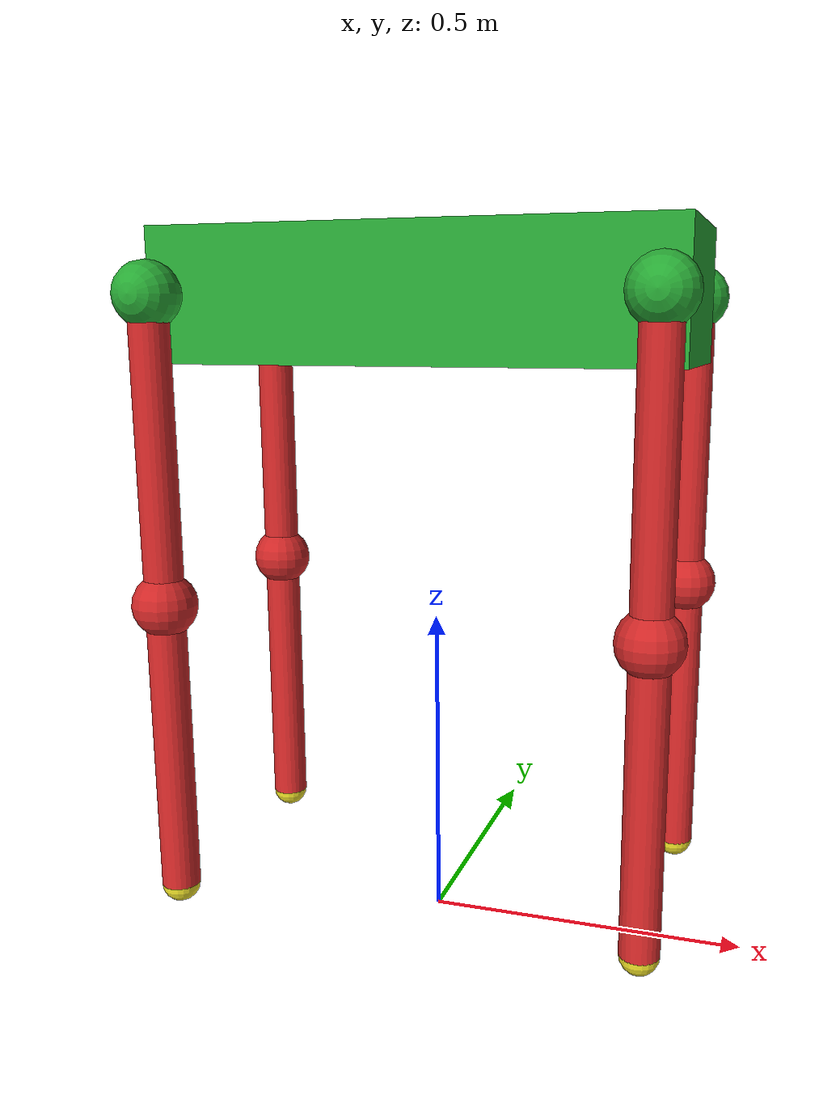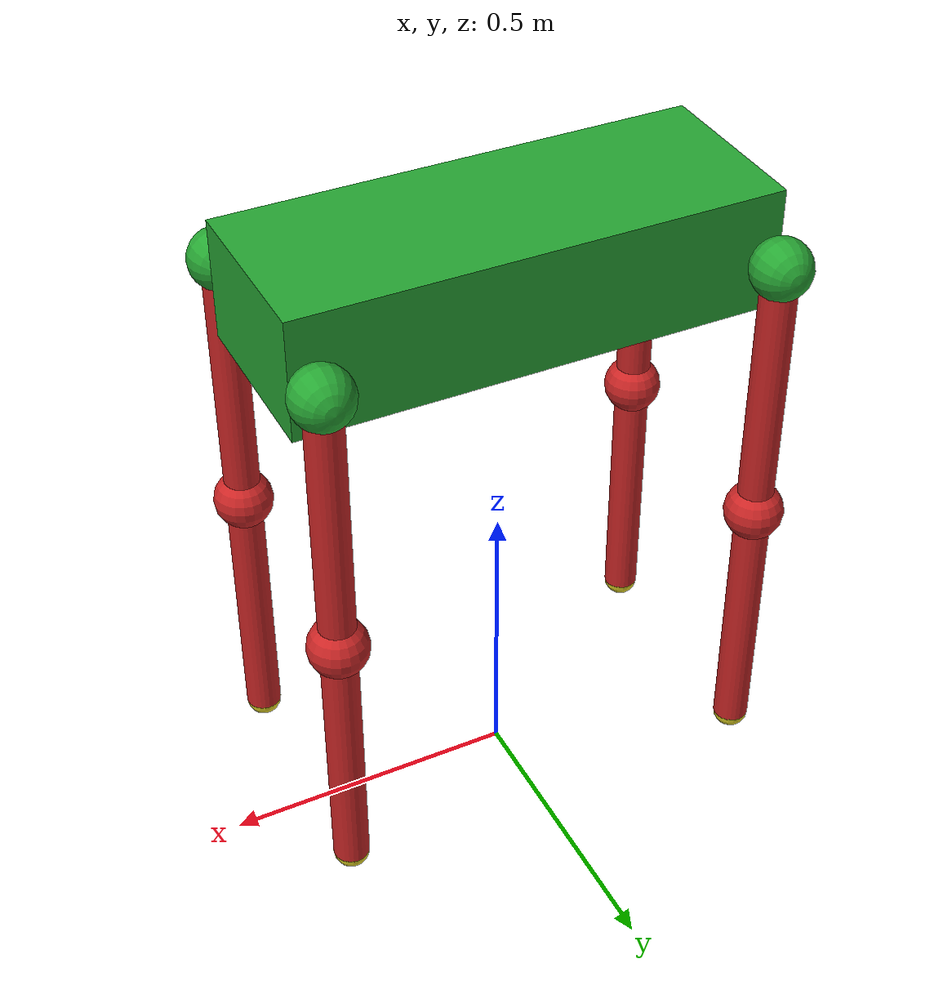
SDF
<!-- |                                    AGILE ROBOT                                  | -->
<?xml version='1.0'?>
<sdf version='1.6'>
  <model name='agile_robot'>
<!-- |                                       BODY                                      | -->
    <link name='body'>
      <pose frame=''>0 0 1 0 0 0</pose>
      <inertial>
        <pose frame=''>0 0 0 0 0 0</pose>
        <mass>25</mass>
        <inertia>
          <ixx>0.0976491</ixx>
          <ixy>0</ixy>
          <ixz>0</ixz>
          <iyy>0.0300741</iyy>
          <iyz>0</iyz>
          <izz>0.109242</izz>
        </inertia>
      </inertial>

      <self_collide>0</self_collide>
      <kinematic>0</kinematic>
      <gravity>1</gravity>
      <enable_wind>0</enable_wind>

      <visual name='body_visual'>
        <pose frame=''>0 0 0 0 -0 0</pose>
        <geometry>
          <box>
            <size>0.8 0.3 0.2</size>
          </box>
        </geometry>
        <material>
          <script>
            <name>Gazebo/Green</name>
            <uri>__default__</uri>
          </script>
          <shader type='vertex'>
            <normal_map>__default__</normal_map>
          </shader>
          <ambient>0 1 0 1</ambient>
          <diffuse>0 1 0 1</diffuse>
          <specular>0.1 0.1 0.1 1</specular>
          <emissive>0 0 0 1</emissive>
        </material>
        <transparency>0</transparency>
        <cast_shadows>1</cast_shadows>
      </visual>

      <collision name='body_collision'>
        <laser_retro>0</laser_retro>
        <max_contacts>10</max_contacts>
        <pose frame=''>0 0 0 0 -0 0</pose>
        <geometry>
          <box>
            <size>0.8 0.3 0.2</size>
          </box>
        </geometry>
        <surface>
          <friction>
            <ode>
              <mu>0.9</mu>
              <mu2>0.45</mu2>
              <fdir1>0 0 0</fdir1>
              <slip1>0</slip1>
              <slip2>0</slip2>
            </ode>
            <torsional>
              <coefficient>1</coefficient>
              <patch_radius>0</patch_radius>
              <surface_radius>0</surface_radius>
              <use_patch_radius>1</use_patch_radius>
              <ode>
                <slip>0</slip>
              </ode>
            </torsional>
          </friction>
          <bounce>
            <restitution_coefficient>0</restitution_coefficient>
            <threshold>1e+06</threshold>
          </bounce>
          <contact>
            <collide_without_contact>0</collide_without_contact>
            <collide_without_contact_bitmask>1</collide_without_contact_bitmask>
            <collide_bitmask>1</collide_bitmask>
            <ode>
              <soft_cfm>0</soft_cfm>
              <soft_erp>0.2</soft_erp>
              <kp>1e+13</kp>
              <kd>1</kd>
              <max_vel>0.01</max_vel>
              <min_depth>0</min_depth>
            </ode>
            <bullet>
              <split_impulse>1</split_impulse>
              <split_impulse_penetration_threshold>-0.01</split_impulse_penetration_threshold>
              <soft_cfm>0</soft_cfm>
              <soft_erp>0.2</soft_erp>
              <kp>1e+13</kp>
              <kd>1</kd>
            </bullet>
          </contact>
        </surface>
      </collision>
    </link> <!-- end body link -->

<!-- |                                  YAW JOINTS                                     | -->
    <joint name='fl_yaw' type='revolute'>
      <parent>body</parent>
      <child>fl_base</child>
      <pose frame=''>0 0 0 0 0 0</pose>

      <axis>
        <xyz>1 0 0</xyz>
        <use_parent_model_frame>1</use_parent_model_frame>
        <limit>
          <lower>-0.329319</lower>
          <upper>0.416405</upper>
          <effort>50</effort>
          <velocity>1</velocity>
        </limit>
        <dynamics>
          <spring_reference>0</spring_reference>
          <spring_stiffness>0</spring_stiffness>
          <damping>0.01</damping>
          <friction>0</friction>
        </dynamics>
      </axis>

      <physics>
        <ode>
          <limit>
            <cfm>0</cfm>
            <erp>0.2</erp>
          </limit>
          <suspension>
            <cfm>0</cfm>
            <erp>0.2</erp>
          </suspension>
        </ode>
      </physics>
    </joint> <!-- end fl_yaw link -->

    <joint name='fr_yaw' type='revolute'>
      <parent>body</parent>
      <child>fr_base</child>
      <pose frame=''>0 0 0 0 0 0</pose>

      <axis>
        <xyz>1 0 0</xyz>
        <use_parent_model_frame>1</use_parent_model_frame>
        <limit>
          <lower>-0.329319</lower>
          <upper>0.416405</upper>
          <effort>50</effort>
          <velocity>1</velocity>
        </limit>
        <dynamics>
          <spring_reference>0</spring_reference>
          <spring_stiffness>0</spring_stiffness>
          <damping>0.01</damping>
          <friction>0</friction>
        </dynamics>
      </axis>

      <physics>
        <ode>
          <limit>
            <cfm>0</cfm>
            <erp>0.2</erp>
          </limit>
          <suspension>
            <cfm>0</cfm>
            <erp>0.2</erp>
          </suspension>
        </ode>
      </physics>
    </joint> <!-- end fr_yaw link -->

    <joint name='hl_yaw' type='revolute'>
      <parent>body</parent>
      <child>hl_base</child>
      <pose frame=''>0 0 0 0 0 0</pose>

      <axis>
        <xyz>1 0 0</xyz>
        <use_parent_model_frame>1</use_parent_model_frame>
        <limit>
          <lower>-0.329319</lower>
          <upper>0.416405</upper>
          <effort>50</effort>
          <velocity>1</velocity>
        </limit>
        <dynamics>
          <spring_reference>0</spring_reference>
          <spring_stiffness>0</spring_stiffness>
          <damping>0.01</damping>
          <friction>0</friction>
        </dynamics>
      </axis>

      <physics>
        <ode>
          <limit>
            <cfm>0</cfm>
            <erp>0.2</erp>
          </limit>
          <suspension>
            <cfm>0</cfm>
            <erp>0.2</erp>
          </suspension>
        </ode>
      </physics>
    </joint> <!-- end hl_yaw link -->

    <joint name='hr_yaw' type='revolute'>
      <parent>body</parent>
      <child>hr_base</child>
      <pose frame=''>0 0 0 0 0 0</pose>

      <axis>
        <xyz>1 0 0</xyz>
        <use_parent_model_frame>1</use_parent_model_frame>
        <limit>
          <lower>-0.329319</lower>
          <upper>0.416405</upper>
          <effort>50</effort>
          <velocity>1</velocity>
        </limit>
        <dynamics>
          <spring_reference>0</spring_reference>
          <spring_stiffness>0</spring_stiffness>
          <damping>0.01</damping>
          <friction>0</friction>
        </dynamics>
      </axis>

      <physics>
        <ode>
          <limit>
            <cfm>0</cfm>
            <erp>0.2</erp>
          </limit>
          <suspension>
            <cfm>0</cfm>
            <erp>0.2</erp>
          </suspension>
        </ode>
      </physics>
    </joint> <!-- end hr_yaw link -->

<!-- |                                   LEG BASES                                     | -->
    <link name='fl_base'>
      <pose frame=''>0.37 0.2 1 0 0 0</pose>
      <inertial>
        <pose frame=''>0 0 0 0 -0 0</pose>
        <mass>0.678337</mass>
        <inertia>
          <ixx>0.0004582</ixx>
          <ixy>0</ixy>
          <ixz>0</ixz>
          <iyy>0.00512144</iyy>
          <iyz>0</iyz>
          <izz>0.00519021</izz>
        </inertia>
      </inertial>

      <velocity_decay>
        <linear>0</linear>
        <angular>0</angular>
      </velocity_decay>
      <self_collide>0</self_collide>
      <kinematic>0</kinematic>
      <gravity>1</gravity>
      <enable_wind>0</enable_wind>

      <visual name='fl_base_visual'>
        <pose frame=''>0 0 0 1.5708 -0 -3.14159</pose>
        <geometry>
          <sphere>
            <radius>0.05</radius>
          </sphere>
        </geometry>
        <material>
          <script>
            <name>Gazebo/Green</name>
            <uri>__default__</uri>
          </script>
          <shader type='vertex'>
            <normal_map>__default__</normal_map>
          </shader>
          <ambient>0 1 0 1</ambient>
          <diffuse>0 1 0 1</diffuse>
          <specular>0.1 0.1 0.1 1</specular>
          <emissive>0 0 0 1</emissive>
        </material>

        <transparency>0</transparency>
        <cast_shadows>1</cast_shadows>
      </visual>

      <collision name='fl_base_collision'>
        <laser_retro>0</laser_retro>
        <max_contacts>10</max_contacts>
        <pose frame=''>0 0 0 0 -0 0</pose>
        <geometry>
          <sphere>
            <radius>0.05</radius>
          </sphere>
        </geometry>
        <surface>
          <friction>
            <ode>
              <mu>0.9</mu>
              <mu2>0.45</mu2>
              <fdir1>0 0 0</fdir1>
              <slip1>0</slip1>
              <slip2>0</slip2>
            </ode>
            <torsional>
              <coefficient>1</coefficient>
              <patch_radius>0</patch_radius>
              <surface_radius>0</surface_radius>
              <use_patch_radius>1</use_patch_radius>
              <ode>
                <slip>0</slip>
              </ode>
            </torsional>
          </friction>
          <bounce>
            <restitution_coefficient>0</restitution_coefficient>
            <threshold>1e+06</threshold>
          </bounce>
          <contact>
            <collide_without_contact>0</collide_without_contact>
            <collide_without_contact_bitmask>1</collide_without_contact_bitmask>
            <collide_bitmask>1</collide_bitmask>
            <ode>
              <soft_cfm>0</soft_cfm>
              <soft_erp>0.2</soft_erp>
              <kp>1e+13</kp>
              <kd>1</kd>
              <max_vel>0.01</max_vel>
              <min_depth>0</min_depth>
            </ode>
            <bullet>
              <split_impulse>1</split_impulse>
              <split_impulse_penetration_threshold>-0.01</split_impulse_penetration_threshold>
              <soft_cfm>0</soft_cfm>
              <soft_erp>0.2</soft_erp>
              <kp>1e+13</kp>
              <kd>1</kd>
            </bullet>
          </contact>
        </surface>
      </collision>
    </link> <!-- end fl_base link -->

    <link name='fr_base'>
      <pose frame=''>-0.37 0.2 1 0 0 0</pose>
      <inertial>
        <pose frame=''>0 0 0 0 -0 0</pose>
        <mass>0.678337</mass>
        <inertia>
          <ixx>0.0004582</ixx>
          <ixy>0</ixy>
          <ixz>0</ixz>
          <iyy>0.00512144</iyy>
          <iyz>0</iyz>
          <izz>0.00519021</izz>
        </inertia>
      </inertial>

      <velocity_decay>
        <linear>0</linear>
        <angular>0</angular>
      </velocity_decay>
      <self_collide>0</self_collide>
      <kinematic>0</kinematic>
      <gravity>1</gravity>
      <enable_wind>0</enable_wind>

      <visual name='fr_base_visual'>
        <pose frame=''>0 0 0 1.5708 -0 -3.14159</pose>
        <geometry>
          <sphere>
            <radius>0.05</radius>
          </sphere>
        </geometry>
        <material>
          <script>
            <name>Gazebo/Green</name>
            <uri>__default__</uri>
          </script>
          <shader type='vertex'>
            <normal_map>__default__</normal_map>
          </shader>
          <ambient>0 1 0 1</ambient>
          <diffuse>0 1 0 1</diffuse>
          <specular>0.1 0.1 0.1 1</specular>
          <emissive>0 0 0 1</emissive>
        </material>

        <transparency>0</transparency>
        <cast_shadows>1</cast_shadows>
      </visual>

      <collision name='fr_base_collision'>
        <laser_retro>0</laser_retro>
        <max_contacts>10</max_contacts>
        <pose frame=''>0 0 0 0 -0 0</pose>
        <geometry>
          <sphere>
            <radius>0.05</radius>
          </sphere>
        </geometry>
        <surface>
          <friction>
            <ode>
              <mu>0.9</mu>
              <mu2>0.45</mu2>
              <fdir1>0 0 0</fdir1>
              <slip1>0</slip1>
              <slip2>0</slip2>
            </ode>
            <torsional>
              <coefficient>1</coefficient>
              <patch_radius>0</patch_radius>
              <surface_radius>0</surface_radius>
              <use_patch_radius>1</use_patch_radius>
              <ode>
                <slip>0</slip>
              </ode>
            </torsional>
          </friction>
          <bounce>
            <restitution_coefficient>0</restitution_coefficient>
            <threshold>1e+06</threshold>
          </bounce>
          <contact>
            <collide_without_contact>0</collide_without_contact>
            <collide_without_contact_bitmask>1</collide_without_contact_bitmask>
            <collide_bitmask>1</collide_bitmask>
            <ode>
              <soft_cfm>0</soft_cfm>
              <soft_erp>0.2</soft_erp>
              <kp>1e+13</kp>
              <kd>1</kd>
              <max_vel>0.01</max_vel>
              <min_depth>0</min_depth>
            </ode>
            <bullet>
              <split_impulse>1</split_impulse>
              <split_impulse_penetration_threshold>-0.01</split_impulse_penetration_threshold>
              <soft_cfm>0</soft_cfm>
              <soft_erp>0.2</soft_erp>
              <kp>1e+13</kp>
              <kd>1</kd>
            </bullet>
          </contact>
        </surface>
      </collision>
    </link> <!-- end fr_base link -->

    <link name='hl_base'>
      <pose frame=''>0.37 -0.2 1 0 0 0</pose>
      <inertial>
        <pose frame=''>0 0 0 0 -0 0</pose>
        <mass>0.678337</mass>
        <inertia>
          <ixx>0.0004582</ixx>
          <ixy>0</ixy>
          <ixz>0</ixz>
          <iyy>0.00512144</iyy>
          <iyz>0</iyz>
          <izz>0.00519021</izz>
        </inertia>
      </inertial>

      <velocity_decay>
        <linear>0</linear>
        <angular>0</angular>
      </velocity_decay>
      <self_collide>0</self_collide>
      <kinematic>0</kinematic>
      <gravity>1</gravity>
      <enable_wind>0</enable_wind>

      <visual name='hl_base_visual'>
        <pose frame=''>0 0 0 1.5708 -0 -3.14159</pose>
        <geometry>
          <sphere>
            <radius>0.05</radius>
          </sphere>
        </geometry>
        <material>
          <script>
            <name>Gazebo/Green</name>
            <uri>__default__</uri>
          </script>
          <shader type='vertex'>
            <normal_map>__default__</normal_map>
          </shader>
          <ambient>0 1 0 1</ambient>
          <diffuse>0 1 0 1</diffuse>
          <specular>0.1 0.1 0.1 1</specular>
          <emissive>0 0 0 1</emissive>
        </material>

        <transparency>0</transparency>
        <cast_shadows>1</cast_shadows>
      </visual>

      <collision name='hl_base_collision'>
        <laser_retro>0</laser_retro>
        <max_contacts>10</max_contacts>
        <pose frame=''>0 0 0 0 -0 0</pose>
        <geometry>
          <sphere>
            <radius>0.05</radius>
          </sphere>
        </geometry>
        <surface>
          <friction>
            <ode>
              <mu>0.9</mu>
              <mu2>0.45</mu2>
              <fdir1>0 0 0</fdir1>
              <slip1>0</slip1>
              <slip2>0</slip2>
            </ode>
            <torsional>
              <coefficient>1</coefficient>
              <patch_radius>0</patch_radius>
              <surface_radius>0</surface_radius>
              <use_patch_radius>1</use_patch_radius>
              <ode>
                <slip>0</slip>
              </ode>
            </torsional>
          </friction>
          <bounce>
            <restitution_coefficient>0</restitution_coefficient>
            <threshold>1e+06</threshold>
          </bounce>
          <contact>
            <collide_without_contact>0</collide_without_contact>
            <collide_without_contact_bitmask>1</collide_without_contact_bitmask>
            <collide_bitmask>1</collide_bitmask>
            <ode>
              <soft_cfm>0</soft_cfm>
              <soft_erp>0.2</soft_erp>
              <kp>1e+13</kp>
              <kd>1</kd>
              <max_vel>0.01</max_vel>
              <min_depth>0</min_depth>
            </ode>
            <bullet>
              <split_impulse>1</split_impulse>
              <split_impulse_penetration_threshold>-0.01</split_impulse_penetration_threshold>
              <soft_cfm>0</soft_cfm>
              <soft_erp>0.2</soft_erp>
              <kp>1e+13</kp>
              <kd>1</kd>
            </bullet>
          </contact>
        </surface>
      </collision>
    </link> <!-- end hl_base link -->

    <link name='hr_base'>
      <pose frame=''>-0.37 -0.2 1 0 0 0</pose>
      <inertial>
        <pose frame=''>0 0 0 0 -0 0</pose>
        <mass>0.678337</mass>
        <inertia>
          <ixx>0.0004582</ixx>
          <ixy>0</ixy>
          <ixz>0</ixz>
          <iyy>0.00512144</iyy>
          <iyz>0</iyz>
          <izz>0.00519021</izz>
        </inertia>
      </inertial>

      <velocity_decay>
        <linear>0</linear>
        <angular>0</angular>
      </velocity_decay>
      <self_collide>0</self_collide>
      <kinematic>0</kinematic>
      <gravity>1</gravity>
      <enable_wind>0</enable_wind>

      <visual name='hr_base_visual'>
        <pose frame=''>0 0 0 1.5708 -0 -3.14159</pose>
        <geometry>
          <sphere>
            <radius>0.05</radius>
          </sphere>
        </geometry>
        <material>
          <script>
            <name>Gazebo/Green</name>
            <uri>__default__</uri>
          </script>
          <shader type='vertex'>
            <normal_map>__default__</normal_map>
          </shader>
          <ambient>0 1 0 1</ambient>
          <diffuse>0 1 0 1</diffuse>
          <specular>0.1 0.1 0.1 1</specular>
          <emissive>0 0 0 1</emissive>
        </material>

        <transparency>0</transparency>
        <cast_shadows>1</cast_shadows>
      </visual>

      <collision name='hr_base_collision'>
        <laser_retro>0</laser_retro>
        <max_contacts>10</max_contacts>
        <pose frame=''>0 0 0 0 -0 0</pose>
        <geometry>
          <sphere>
            <radius>0.05</radius>
          </sphere>
        </geometry>
        <surface>
          <friction>
            <ode>
              <mu>0.9</mu>
              <mu2>0.45</mu2>
              <fdir1>0 0 0</fdir1>
              <slip1>0</slip1>
              <slip2>0</slip2>
            </ode>
            <torsional>
              <coefficient>1</coefficient>
              <patch_radius>0</patch_radius>
              <surface_radius>0</surface_radius>
              <use_patch_radius>1</use_patch_radius>
              <ode>
                <slip>0</slip>
              </ode>
            </torsional>
          </friction>
          <bounce>
            <restitution_coefficient>0</restitution_coefficient>
            <threshold>1e+06</threshold>
          </bounce>
          <contact>
            <collide_without_contact>0</collide_without_contact>
            <collide_without_contact_bitmask>1</collide_without_contact_bitmask>
            <collide_bitmask>1</collide_bitmask>
            <ode>
              <soft_cfm>0</soft_cfm>
              <soft_erp>0.2</soft_erp>
              <kp>1e+13</kp>
              <kd>1</kd>
              <max_vel>0.01</max_vel>
              <min_depth>0</min_depth>
            </ode>
            <bullet>
              <split_impulse>1</split_impulse>
              <split_impulse_penetration_threshold>-0.01</split_impulse_penetration_threshold>
              <soft_cfm>0</soft_cfm>
              <soft_erp>0.2</soft_erp>
              <kp>1e+13</kp>
              <kd>1</kd>
            </bullet>
          </contact>
        </surface>
      </collision>
    </link> <!-- end hr_base link -->

<!-- |                                LEG HIP JOINTS                                   | -->
    <joint name='fl_hip' type='revolute'>
      <parent>fl_base</parent>
      <child>fl_leg</child>
      <pose frame=''>0 0 0.23 0 0 0</pose>

      <axis>
        <xyz>0 1 0</xyz>
        <use_parent_model_frame>1</use_parent_model_frame>
        <limit>
          <lower>-0.262827</lower>
          <upper>0.8726</upper>
          <effort>50</effort>
          <velocity>1</velocity>
        </limit>
        <dynamics>
          <spring_reference>0</spring_reference>
          <spring_stiffness>0</spring_stiffness>
          <damping>0.01</damping>
          <friction>0</friction>
        </dynamics>
      </axis>

      <physics>
        <ode>
          <limit>
            <cfm>0</cfm>
            <erp>0.2</erp>
          </limit>
          <suspension>
            <cfm>0</cfm>
            <erp>0.2</erp>
          </suspension>
        </ode>
      </physics>
    </joint> <!-- end fl_hip joint -->

    <joint name='fr_hip' type='revolute'>
      <parent>fr_base</parent>
      <child>fr_leg</child>
      <pose frame=''>0 0 0.23 0 0 0</pose>

      <axis>
        <xyz>0 1 0</xyz>
        <use_parent_model_frame>1</use_parent_model_frame>
        <limit>
          <lower>-0.262827</lower>
          <upper>0.8726</upper>
          <effort>50</effort>
          <velocity>1</velocity>
        </limit>
        <dynamics>
          <spring_reference>0</spring_reference>
          <spring_stiffness>0</spring_stiffness>
          <damping>0.01</damping>
          <friction>0</friction>
        </dynamics>
      </axis>

      <physics>
        <ode>
          <limit>
            <cfm>0</cfm>
            <erp>0.2</erp>
          </limit>
          <suspension>
            <cfm>0</cfm>
            <erp>0.2</erp>
          </suspension>
        </ode>
      </physics>
    </joint> <!-- end fl_hip joint -->

    <joint name='hl_hip' type='revolute'>
      <parent>hl_base</parent>
      <child>hl_leg</child>
      <pose frame=''>0 0 0.23 0 0 0</pose>

      <axis>
        <xyz>0 1 0</xyz>
        <use_parent_model_frame>1</use_parent_model_frame>
        <limit>
          <lower>-0.8726</lower>
          <upper>0.262827</upper>
          <effort>50</effort>
          <velocity>1</velocity>
        </limit>
        <dynamics>
          <spring_reference>0</spring_reference>
          <spring_stiffness>0</spring_stiffness>
          <damping>0.01</damping>
          <friction>0</friction>
        </dynamics>
      </axis>

      <physics>
        <ode>
          <limit>
            <cfm>0</cfm>
            <erp>0.2</erp>
          </limit>
          <suspension>
            <cfm>0</cfm>
            <erp>0.2</erp>
          </suspension>
        </ode>
      </physics>
    </joint> <!-- end hl_hip joint -->

    <joint name='hr_hip' type='revolute'>
      <parent>hr_base</parent>
      <child>hr_leg</child>
      <pose frame=''>0 0 0.23 0 0 0</pose>

      <axis>
        <xyz>0 1 0</xyz>
        <use_parent_model_frame>1</use_parent_model_frame>
        <limit>
          <lower>-0.8726</lower>
          <upper>0.262827</upper>
          <effort>50</effort>
          <velocity>1</velocity>
        </limit>
        <dynamics>
          <spring_reference>0</spring_reference>
          <spring_stiffness>0</spring_stiffness>
          <damping>0.01</damping>
          <friction>0</friction>
        </dynamics>
      </axis>

      <physics>
        <ode>
          <limit>
            <cfm>0</cfm>
            <erp>0.2</erp>
          </limit>
          <suspension>
            <cfm>0</cfm>
            <erp>0.2</erp>
          </suspension>
        </ode>
      </physics>
    </joint> <!-- end hr_hip joint -->

<!-- |                                LEG LEG LINKS                                   | -->
    <link name='fl_leg'>
      <pose frame=''>0.37 0.2 0.77 0 0 0</pose>

      <inertial>
        <pose frame=''>0 0 0 0 0 0</pose>
        <mass>1</mass>
        <inertia>
          <ixx>0.001443</ixx>
          <ixy>0</ixy>
          <ixz>0</ixz>
          <iyy>0.00104333</iyy>
          <iyz>0</iyz>
          <izz>0.00200033</izz>
        </inertia>
      </inertial>

      <velocity_decay>
        <linear>0</linear>
        <angular>0</angular>
      </velocity_decay>
      <self_collide>0</self_collide>
      <kinematic>0</kinematic>
      <gravity>1</gravity>
      <enable_wind>0</enable_wind>

      <visual name='fl_leg_link_visual'>
        <pose frame=''>0 0 0 0 0 0</pose>
        <geometry>
          <cylinder>
            <radius>0.03</radius>
            <length>0.46</length>
          </cylinder>
        </geometry>
        <material>
          <script>
            <name>Gazebo/Red</name>
            <uri>__default__</uri>
          </script>
          <shader type='vertex'>
            <normal_map>__default__</normal_map>
          </shader>
          <ambient>1 0 0 1</ambient>
          <diffuse>1 0 0 1</diffuse>
          <specular>0.1 0.1 0.1 1</specular>
          <emissive>0 0 0 1</emissive>
        </material>
        <transparency>0</transparency>
        <cast_shadows>1</cast_shadows>
      </visual>

      <visual name='fl_leg_knee_visual'>
        <pose frame=''>0 0 -0.23 0 0 0</pose>
        <geometry>
          <sphere>
            <radius>0.05</radius>
          </sphere>
        </geometry>
        <material>
          <script>
            <name>Gazebo/Red</name>
            <uri>__default__</uri>
          </script>
          <shader type='vertex'>
            <normal_map>__default__</normal_map>
          </shader>
          <ambient>1 0 0 1</ambient>
          <diffuse>1 0 0 1</diffuse>
          <specular>0.1 0.1 0.1 1</specular>
          <emissive>0 0 0 1</emissive>
        </material>
        <transparency>0</transparency>
        <cast_shadows>1</cast_shadows>
      </visual>

      <collision name='fl_leg_collision'>
        <laser_retro>0</laser_retro>
        <max_contacts>10</max_contacts>
        <pose frame=''>0 0 0 0 -0 0</pose>
        <geometry>
          <cylinder>
            <radius>0.03</radius>
            <length>0.36</length>
          </cylinder>
        </geometry>
        <surface>
          <friction>
            <ode>
              <mu>0.9</mu>
              <mu2>0.45</mu2>
              <fdir1>0 0 0</fdir1>
              <slip1>0</slip1>
              <slip2>0</slip2>
            </ode>
            <torsional>
              <coefficient>1</coefficient>
              <patch_radius>0</patch_radius>
              <surface_radius>0</surface_radius>
              <use_patch_radius>1</use_patch_radius>
              <ode>
                <slip>0</slip>
              </ode>
            </torsional>
          </friction>
          <bounce>
            <restitution_coefficient>0</restitution_coefficient>
            <threshold>1e+06</threshold>
          </bounce>
          <contact>
            <collide_without_contact>0</collide_without_contact>
            <collide_without_contact_bitmask>1</collide_without_contact_bitmask>
            <collide_bitmask>1</collide_bitmask>
            <ode>
              <soft_cfm>0</soft_cfm>
              <soft_erp>0.2</soft_erp>
              <kp>1e+13</kp>
              <kd>1</kd>
              <max_vel>0.01</max_vel>
              <min_depth>0</min_depth>
            </ode>
            <bullet>
              <split_impulse>1</split_impulse>
              <split_impulse_penetration_threshold>-0.01</split_impulse_penetration_threshold>
              <soft_cfm>0</soft_cfm>
              <soft_erp>0.2</soft_erp>
              <kp>1e+13</kp>
              <kd>1</kd>
            </bullet>
          </contact>
        </surface>
      </collision>
    </link> <!-- end fl_leg link -->

    <link name='fr_leg'>
      <pose frame=''>-0.37 0.2 0.77 0 -0 0</pose>

      <inertial>
        <pose frame=''>0 0 0 0 0 0</pose>
        <mass>1</mass>
        <inertia>
          <ixx>0.001443</ixx>
          <ixy>0</ixy>
          <ixz>0</ixz>
          <iyy>0.00104333</iyy>
          <iyz>0</iyz>
          <izz>0.00200033</izz>
        </inertia>
      </inertial>

      <velocity_decay>
        <linear>0</linear>
        <angular>0</angular>
      </velocity_decay>
      <self_collide>0</self_collide>
      <kinematic>0</kinematic>
      <gravity>1</gravity>
      <enable_wind>0</enable_wind>

      <visual name='fr_leg_link_visual'>
        <pose frame=''>0 0 0 0 0 0</pose>
        <geometry>
          <cylinder>
            <radius>0.03</radius>
            <length>0.46</length>
          </cylinder>
        </geometry>
        <material>
          <script>
            <name>Gazebo/Red</name>
            <uri>__default__</uri>
          </script>
          <shader type='vertex'>
            <normal_map>__default__</normal_map>
          </shader>
          <ambient>1 0 0 1</ambient>
          <diffuse>1 0 0 1</diffuse>
          <specular>0.1 0.1 0.1 1</specular>
          <emissive>0 0 0 1</emissive>
        </material>
        <transparency>0</transparency>
        <cast_shadows>1</cast_shadows>
      </visual>

      <visual name='fr_leg_knee_visual'>
        <pose frame=''>0 0 -0.23 0 -0 0</pose>
        <geometry>
          <sphere>
            <radius>0.05</radius>
          </sphere>
        </geometry>
        <material>
          <script>
            <name>Gazebo/Red</name>
            <uri>__default__</uri>
          </script>
          <shader type='vertex'>
            <normal_map>__default__</normal_map>
          </shader>
          <ambient>1 0 0 1</ambient>
          <diffuse>1 0 0 1</diffuse>
          <specular>0.1 0.1 0.1 1</specular>
          <emissive>0 0 0 1</emissive>
        </material>
        <transparency>0</transparency>
        <cast_shadows>1</cast_shadows>
      </visual>

      <collision name='fr_leg_collision'>
        <laser_retro>0</laser_retro>
        <max_contacts>10</max_contacts>
        <pose frame=''>0 0 0 0 -0 0</pose>
        <geometry>
          <cylinder>
            <radius>0.03</radius>
            <length>0.36</length>
          </cylinder>
        </geometry>
        <surface>
          <friction>
            <ode>
              <mu>0.9</mu>
              <mu2>0.45</mu2>
              <fdir1>0 0 0</fdir1>
              <slip1>0</slip1>
              <slip2>0</slip2>
            </ode>
            <torsional>
              <coefficient>1</coefficient>
              <patch_radius>0</patch_radius>
              <surface_radius>0</surface_radius>
              <use_patch_radius>1</use_patch_radius>
              <ode>
                <slip>0</slip>
              </ode>
            </torsional>
          </friction>
          <bounce>
            <restitution_coefficient>0</restitution_coefficient>
            <threshold>1e+06</threshold>
          </bounce>
          <contact>
            <collide_without_contact>0</collide_without_contact>
            <collide_without_contact_bitmask>1</collide_without_contact_bitmask>
            <collide_bitmask>1</collide_bitmask>
            <ode>
              <soft_cfm>0</soft_cfm>
              <soft_erp>0.2</soft_erp>
              <kp>1e+13</kp>
              <kd>1</kd>
              <max_vel>0.01</max_vel>
              <min_depth>0</min_depth>
            </ode>
            <bullet>
              <split_impulse>1</split_impulse>
              <split_impulse_penetration_threshold>-0.01</split_impulse_penetration_threshold>
              <soft_cfm>0</soft_cfm>
              <soft_erp>0.2</soft_erp>
              <kp>1e+13</kp>
              <kd>1</kd>
            </bullet>
          </contact>
        </surface>
      </collision>
    </link> <!-- end fr_leg link -->

    <link name='hl_leg'>
      <pose frame=''>0.37 -0.2 0.77 0 0 0</pose>

      <inertial>
        <pose frame=''>0 0 0 0 0 0</pose>
        <mass>1</mass>
        <inertia>
          <ixx>0.001443</ixx>
          <ixy>0</ixy>
          <ixz>0</ixz>
          <iyy>0.00104333</iyy>
          <iyz>0</iyz>
          <izz>0.00200033</izz>
        </inertia>
      </inertial>

      <velocity_decay>
        <linear>0</linear>
        <angular>0</angular>
      </velocity_decay>
      <self_collide>0</self_collide>
      <kinematic>0</kinematic>
      <gravity>1</gravity>
      <enable_wind>0</enable_wind>

      <visual name='hl_leg_link_visual'>
        <pose frame=''>0 0 0 0 0 0</pose>
        <geometry>
          <cylinder>
            <radius>0.03</radius>
            <length>0.46</length>
          </cylinder>
        </geometry>
        <material>
          <script>
            <name>Gazebo/Red</name>
            <uri>__default__</uri>
          </script>
          <shader type='vertex'>
            <normal_map>__default__</normal_map>
          </shader>
          <ambient>1 0 0 1</ambient>
          <diffuse>1 0 0 1</diffuse>
          <specular>0.1 0.1 0.1 1</specular>
          <emissive>0 0 0 1</emissive>
        </material>
        <transparency>0</transparency>
        <cast_shadows>1</cast_shadows>
      </visual>

      <visual name='hl_leg_knee_visual'>
        <pose frame=''>0 0 -0.23 0 0 0</pose>
        <geometry>
          <sphere>
            <radius>0.05</radius>
          </sphere>
        </geometry>
        <material>
          <script>
            <name>Gazebo/Red</name>
            <uri>__default__</uri>
          </script>
          <shader type='vertex'>
            <normal_map>__default__</normal_map>
          </shader>
          <ambient>1 0 0 1</ambient>
          <diffuse>1 0 0 1</diffuse>
          <specular>0.1 0.1 0.1 1</specular>
          <emissive>0 0 0 1</emissive>
        </material>
        <transparency>0</transparency>
        <cast_shadows>1</cast_shadows>
      </visual>

      <collision name='hl_leg_collision'>
        <laser_retro>0</laser_retro>
        <max_contacts>10</max_contacts>
        <pose frame=''>0 0 0 0 0 0</pose>
        <geometry>
          <cylinder>
            <radius>0.03</radius>
            <length>0.36</length>
          </cylinder>
        </geometry>
        <surface>
          <friction>
            <ode>
              <mu>0.9</mu>
              <mu2>0.45</mu2>
              <fdir1>0 0 0</fdir1>
              <slip1>0</slip1>
              <slip2>0</slip2>
            </ode>
            <torsional>
              <coefficient>1</coefficient>
              <patch_radius>0</patch_radius>
              <surface_radius>0</surface_radius>
              <use_patch_radius>1</use_patch_radius>
              <ode>
                <slip>0</slip>
              </ode>
            </torsional>
          </friction>
          <bounce>
            <restitution_coefficient>0</restitution_coefficient>
            <threshold>1e+06</threshold>
          </bounce>
          <contact>
            <collide_without_contact>0</collide_without_contact>
            <collide_without_contact_bitmask>1</collide_without_contact_bitmask>
            <collide_bitmask>1</collide_bitmask>
            <ode>
              <soft_cfm>0</soft_cfm>
              <soft_erp>0.2</soft_erp>
              <kp>1e+13</kp>
              <kd>1</kd>
              <max_vel>0.01</max_vel>
              <min_depth>0</min_depth>
            </ode>
            <bullet>
              <split_impulse>1</split_impulse>
              <split_impulse_penetration_threshold>-0.01</split_impulse_penetration_threshold>
              <soft_cfm>0</soft_cfm>
              <soft_erp>0.2</soft_erp>
              <kp>1e+13</kp>
              <kd>1</kd>
            </bullet>
          </contact>
        </surface>
      </collision>
    </link> <!-- end hl_leg link -->

    <link name='hr_leg'>
      <pose frame=''>-0.37 -0.2 0.77 0 -0 0</pose>

      <inertial>
        <pose frame=''>0 0 0 0 0 0</pose>
        <mass>1</mass>
        <inertia>
          <ixx>0.001443</ixx>
          <ixy>0</ixy>
          <ixz>0</ixz>
          <iyy>0.00104333</iyy>
          <iyz>0</iyz>
          <izz>0.00200033</izz>
        </inertia>
      </inertial>

      <velocity_decay>
        <linear>0</linear>
        <angular>0</angular>
      </velocity_decay>
      <self_collide>0</self_collide>
      <kinematic>0</kinematic>
      <gravity>1</gravity>
      <enable_wind>0</enable_wind>

      <visual name='hr_leg_link_visual'>
        <pose frame=''>0 0 0 0 0 0</pose>
        <geometry>
          <cylinder>
            <radius>0.03</radius>
            <length>0.46</length>
          </cylinder>
        </geometry>
        <material>
          <script>
            <name>Gazebo/Red</name>
            <uri>__default__</uri>
          </script>
          <shader type='vertex'>
            <normal_map>__default__</normal_map>
          </shader>
          <ambient>1 0 0 1</ambient>
          <diffuse>1 0 0 1</diffuse>
          <specular>0.1 0.1 0.1 1</specular>
          <emissive>0 0 0 1</emissive>
        </material>
        <transparency>0</transparency>
        <cast_shadows>1</cast_shadows>
      </visual>

      <visual name='hr_leg_knee_visual'>
        <pose frame=''>0 0 -0.23 0 0 0</pose>
        <geometry>
          <sphere>
            <radius>0.05</radius>
          </sphere>
        </geometry>
        <material>
          <script>
            <name>Gazebo/Red</name>
            <uri>__default__</uri>
          </script>
          <shader type='vertex'>
            <normal_map>__default__</normal_map>
          </shader>
          <ambient>1 0 0 1</ambient>
          <diffuse>1 0 0 1</diffuse>
          <specular>0.1 0.1 0.1 1</specular>
          <emissive>0 0 0 1</emissive>
        </material>
        <transparency>0</transparency>
        <cast_shadows>1</cast_shadows>
      </visual>

      <collision name='hr_leg_collision'>
        <laser_retro>0</laser_retro>
        <max_contacts>10</max_contacts>
        <pose frame=''>0 0 0 0 -0 0</pose>
        <geometry>
          <cylinder>
            <radius>0.03</radius>
            <length>0.36</length>
          </cylinder>
        </geometry>
        <surface>
          <friction>
            <ode>
              <mu>0.9</mu>
              <mu2>0.45</mu2>
              <fdir1>0 0 0</fdir1>
              <slip1>0</slip1>
              <slip2>0</slip2>
            </ode>
            <torsional>
              <coefficient>1</coefficient>
              <patch_radius>0</patch_radius>
              <surface_radius>0</surface_radius>
              <use_patch_radius>1</use_patch_radius>
              <ode>
                <slip>0</slip>
              </ode>
            </torsional>
          </friction>
          <bounce>
            <restitution_coefficient>0</restitution_coefficient>
            <threshold>1e+06</threshold>
          </bounce>
          <contact>
            <collide_without_contact>0</collide_without_contact>
            <collide_without_contact_bitmask>1</collide_without_contact_bitmask>
            <collide_bitmask>1</collide_bitmask>
            <ode>
              <soft_cfm>0</soft_cfm>
              <soft_erp>0.2</soft_erp>
              <kp>1e+13</kp>
              <kd>1</kd>
              <max_vel>0.01</max_vel>
              <min_depth>0</min_depth>
            </ode>
            <bullet>
              <split_impulse>1</split_impulse>
              <split_impulse_penetration_threshold>-0.01</split_impulse_penetration_threshold>
              <soft_cfm>0</soft_cfm>
              <soft_erp>0.2</soft_erp>
              <kp>1e+13</kp>
              <kd>1</kd>
            </bullet>
          </contact>
        </surface>
      </collision>
    </link> <!-- end fr_leg link -->

<!-- |                               LEG KNEE JOINTS                                   | -->
    <joint name='fl_knee' type='revolute'>
      <parent>fl_leg</parent>
      <child>fl_shine</child>
      <pose frame=''>0 0 0.23 0 0 0</pose>
      <axis>
        <xyz>0 1 0</xyz>
        <use_parent_model_frame>1</use_parent_model_frame>
        <limit>
          <lower>-1.72775</lower>
          <upper>-0.595113</upper>
          <effort>50</effort>
          <velocity>1</velocity>
        </limit>
        <dynamics>
          <spring_reference>0</spring_reference>
          <spring_stiffness>0</spring_stiffness>
          <damping>0.01</damping>
          <friction>0</friction>
        </dynamics>
      </axis>
      <physics>
        <ode>
          <limit>
            <cfm>0</cfm>
            <erp>0.2</erp>
          </limit>
          <suspension>
            <cfm>0</cfm>
            <erp>0.2</erp>
          </suspension>
        </ode>
      </physics>
    </joint> <!-- end fl_knee joint -->

    <joint name='fr_knee' type='revolute'>
      <parent>fr_leg</parent>
      <child>fr_shine</child>
      <pose frame=''>0 0 0.23 0 0 0</pose>
      <axis>
        <xyz>0 1 0</xyz>
        <use_parent_model_frame>1</use_parent_model_frame>
        <limit>
          <lower>-1.72775</lower>
          <upper>-0.595113</upper>
          <effort>50</effort>
          <velocity>1</velocity>
        </limit>
        <dynamics>
          <spring_reference>0</spring_reference>
          <spring_stiffness>0</spring_stiffness>
          <damping>0.01</damping>
          <friction>0</friction>
        </dynamics>
      </axis>
      <physics>
        <ode>
          <limit>
            <cfm>0</cfm>
            <erp>0.2</erp>
          </limit>
          <suspension>
            <cfm>0</cfm>
            <erp>0.2</erp>
          </suspension>
        </ode>
      </physics>
    </joint> <!-- end fr_knee joint -->

    <joint name='hl_knee' type='revolute'>
      <parent>hl_leg</parent>
      <child>hl_shine</child>
      <pose frame=''>0 0 0.23 0 0 0</pose>
      <axis>
        <xyz>0 1 0</xyz>
        <use_parent_model_frame>1</use_parent_model_frame>
        <limit>
          <lower>0.595113</lower>
          <upper>1.72775</upper>
          <effort>50</effort>
          <velocity>1</velocity>
        </limit>
        <dynamics>
          <spring_reference>0</spring_reference>
          <spring_stiffness>0</spring_stiffness>
          <damping>0.01</damping>
          <friction>0</friction>
        </dynamics>
      </axis>
      <physics>
        <ode>
          <limit>
            <cfm>0</cfm>
            <erp>0.2</erp>
          </limit>
          <suspension>
            <cfm>0</cfm>
            <erp>0.2</erp>
          </suspension>
        </ode>
      </physics>
    </joint> <!-- end hl_knee joint -->

    <joint name='hr_knee' type='revolute'>
      <parent>hr_leg</parent>
      <child>hr_shine</child>
      <pose frame=''>0 0 0.23 0 0 0</pose>
      <axis>
        <xyz>0 1 0</xyz>
        <use_parent_model_frame>1</use_parent_model_frame>
        <limit>
          <lower>0.595113</lower>
          <upper>1.72775</upper>
          <effort>50</effort>
          <velocity>1</velocity>
        </limit>
        <dynamics>
          <spring_reference>0</spring_reference>
          <spring_stiffness>0</spring_stiffness>
          <damping>0.01</damping>
          <friction>0</friction>
        </dynamics>
      </axis>
      <physics>
        <ode>
          <limit>
            <cfm>0</cfm>
            <erp>0.2</erp>
          </limit>
          <suspension>
            <cfm>0</cfm>
            <erp>0.2</erp>
          </suspension>
        </ode>
      </physics>
    </joint> <!-- end hr_knee joint -->

<!-- |                               LEG SHINE LINKS                                   | -->
    <link name='fl_shine'>
      <pose frame=''>0.37 0.2 0.31 0 0 0</pose>
      <inertial>
        <pose frame=''>0 0 0 0 0 0</pose>
        <mass>1</mass>
        <inertia>
          <ixx>0.0034413</ixx>
          <ixy>0</ixy>
          <ixz>0</ixz>
          <iyy>0.00337367</iyy>
          <iyz>0</iyz>
          <izz>0.0001483</izz>
        </inertia>
      </inertial>

      <velocity_decay>
        <linear>0</linear>
        <angular>0</angular>
      </velocity_decay>
      <self_collide>0</self_collide>
      <kinematic>0</kinematic>
      <gravity>1</gravity>
      <enable_wind>0</enable_wind>

      <visual name='fl_shine_visual'>
        <pose frame=''>0 0 0 0 -0 0</pose>
        <geometry>
          <cylinder>
            <radius>0.03</radius>
            <length>0.46</length>
          </cylinder>
        </geometry>
        <material>
          <script>
            <name>Gazebo/Red</name>
            <uri>__default__</uri>
          </script>
          <shader type='vertex'>
            <normal_map>__default__</normal_map>
          </shader>
          <ambient>1 0 0 1</ambient>
          <diffuse>1 0 0 1</diffuse>
          <specular>0.1 0.1 0.1 1</specular>
          <emissive>0 0 0 1</emissive>
        </material>
        <transparency>0</transparency>
        <cast_shadows>1</cast_shadows>
      </visual>

      <visual name='fl_foot_visual'>
        <pose frame=''>0 0 -0.23 0 -0 0</pose>
        <geometry>
          <sphere>
            <radius>0.03</radius>
          </sphere>
        </geometry>
        <material>
          <script>
            <name>Gazebo/Yellow</name>
            <uri>__default__</uri>
          </script>
          <shader type='vertex'>
            <normal_map>__default__</normal_map>
          </shader>
          <ambient>1 1 0 1</ambient>
          <diffuse>1 1 0 1</diffuse>
          <emissive>0 0 0 1</emissive>
        </material>
        <transparency>0</transparency>
        <cast_shadows>1</cast_shadows>
      </visual>

      <collision name='fl_shine_collision'>
        <laser_retro>0</laser_retro>
        <max_contacts>10</max_contacts>
        <pose frame=''>0 0 0 0 -0 0</pose>
        <geometry>
          <cylinder>
            <radius>0.03</radius>
            <length>0.46</length>
          </cylinder>
        </geometry>
        <surface>
          <friction>
            <ode>
              <mu>0.9</mu>
              <mu2>0.45</mu2>
              <fdir1>0 0 0</fdir1>
              <slip1>0</slip1>
              <slip2>0</slip2>
            </ode>
            <torsional>
              <coefficient>1</coefficient>
              <patch_radius>0</patch_radius>
              <surface_radius>0</surface_radius>
              <use_patch_radius>1</use_patch_radius>
              <ode>
                <slip>0</slip>
              </ode>
            </torsional>
          </friction>
          <bounce>
            <restitution_coefficient>0</restitution_coefficient>
            <threshold>1e+06</threshold>
          </bounce>
          <contact>
            <collide_without_contact>0</collide_without_contact>
            <collide_without_contact_bitmask>1</collide_without_contact_bitmask>
            <collide_bitmask>1</collide_bitmask>
            <ode>
              <soft_cfm>0</soft_cfm>
              <soft_erp>0.2</soft_erp>
              <kp>1e+13</kp>
              <kd>1</kd>
              <max_vel>0.01</max_vel>
              <min_depth>0</min_depth>
            </ode>
            <bullet>
              <split_impulse>1</split_impulse>
              <split_impulse_penetration_threshold>-0.01</split_impulse_penetration_threshold>
              <soft_cfm>0</soft_cfm>
              <soft_erp>0.2</soft_erp>
              <kp>1e+13</kp>
              <kd>1</kd>
            </bullet>
          </contact>
        </surface>
      </collision>

      <collision name='fl_foot_collision'>
        <laser_retro>0</laser_retro>
        <max_contacts>10</max_contacts>
        <pose frame=''>0 0 -0.23 0 -0 0</pose>
        <geometry>
          <sphere>
            <radius>0.03</radius>
          </sphere>
        </geometry>
        <surface>
          <friction>
            <ode>
              <mu>0.9</mu>
              <mu2>0.45</mu2>
              <fdir1>0 0 0</fdir1>
              <slip1>0</slip1>
              <slip2>0</slip2>
            </ode>
            <torsional>
              <coefficient>1</coefficient>
              <patch_radius>0</patch_radius>
              <surface_radius>0</surface_radius>
              <use_patch_radius>1</use_patch_radius>
              <ode>
                <slip>0</slip>
              </ode>
            </torsional>
          </friction>
          <bounce>
            <restitution_coefficient>0</restitution_coefficient>
            <threshold>1e+06</threshold>
          </bounce>
          <contact>
            <collide_without_contact>0</collide_without_contact>
            <collide_without_contact_bitmask>1</collide_without_contact_bitmask>
            <collide_bitmask>1</collide_bitmask>
            <ode>
              <soft_cfm>0</soft_cfm>
              <soft_erp>0.2</soft_erp>
              <kp>1e+13</kp>
              <kd>1</kd>
              <max_vel>0.01</max_vel>
              <min_depth>0</min_depth>
            </ode>
            <bullet>
              <split_impulse>1</split_impulse>
              <split_impulse_penetration_threshold>-0.01</split_impulse_penetration_threshold>
              <soft_cfm>0</soft_cfm>
              <soft_erp>0.2</soft_erp>
              <kp>1e+13</kp>
              <kd>1</kd>
            </bullet>
          </contact>
        </surface>
      </collision>

      <sensor name='fl_contact' type='contact'>
        <contact>
          <collision>fl_foot_collision</collision>
          <topic>fl_td</topic>
        </contact>
      </sensor>
    </link> <!-- end fl_shine link -->

    <link name='fr_shine'>
      <pose frame=''>-0.37 0.2 0.31 0 0 0</pose>
      <inertial>
        <pose frame=''>0 0 0 0 0 0</pose>
        <mass>1</mass>
        <inertia>
          <ixx>0.0034413</ixx>
          <ixy>0</ixy>
          <ixz>0</ixz>
          <iyy>0.00337367</iyy>
          <iyz>0</iyz>
          <izz>0.0001483</izz>
        </inertia>
      </inertial>

      <velocity_decay>
        <linear>0</linear>
        <angular>0</angular>
      </velocity_decay>
      <self_collide>0</self_collide>
      <kinematic>0</kinematic>
      <gravity>1</gravity>
      <enable_wind>0</enable_wind>

      <visual name='fr_shine_visual'>
        <pose frame=''>0 0 0 0 -0 0</pose>
        <geometry>
          <cylinder>
            <radius>0.03</radius>
            <length>0.46</length>
          </cylinder>
        </geometry>
        <material>
          <script>
            <name>Gazebo/Red</name>
            <uri>__default__</uri>
          </script>
          <shader type='vertex'>
            <normal_map>__default__</normal_map>
          </shader>
          <ambient>1 0 0 1</ambient>
          <diffuse>1 0 0 1</diffuse>
          <specular>0.1 0.1 0.1 1</specular>
          <emissive>0 0 0 1</emissive>
        </material>
        <transparency>0</transparency>
        <cast_shadows>1</cast_shadows>
      </visual>

      <visual name='fr_foot_visual'>
        <pose frame=''>0 0 -0.23 0 0 0</pose>
        <geometry>
          <sphere>
            <radius>0.03</radius>
          </sphere>
        </geometry>
        <material>
          <script>
            <name>Gazebo/Yellow</name>
            <uri>__default__</uri>
          </script>
          <shader type='vertex'>
            <normal_map>__default__</normal_map>
          </shader>
          <ambient>1 1 0 1</ambient>
          <diffuse>1 1 0 1</diffuse>
          <emissive>0 0 0 1</emissive>
        </material>
        <transparency>0</transparency>
        <cast_shadows>1</cast_shadows>
      </visual>

      <collision name='fr_shine_collision'>
        <laser_retro>0</laser_retro>
        <max_contacts>10</max_contacts>
        <pose frame=''>0 0 0 0 0 0</pose>
        <geometry>
          <cylinder>
            <radius>0.03</radius>
            <length>0.46</length>
          </cylinder>
        </geometry>
        <surface>
          <friction>
            <ode>
              <mu>0.9</mu>
              <mu2>0.45</mu2>
              <fdir1>0 0 0</fdir1>
              <slip1>0</slip1>
              <slip2>0</slip2>
            </ode>
            <torsional>
              <coefficient>1</coefficient>
              <patch_radius>0</patch_radius>
              <surface_radius>0</surface_radius>
              <use_patch_radius>1</use_patch_radius>
              <ode>
                <slip>0</slip>
              </ode>
            </torsional>
          </friction>
          <bounce>
            <restitution_coefficient>0</restitution_coefficient>
            <threshold>1e+06</threshold>
          </bounce>
          <contact>
            <collide_without_contact>0</collide_without_contact>
            <collide_without_contact_bitmask>1</collide_without_contact_bitmask>
            <collide_bitmask>1</collide_bitmask>
            <ode>
              <soft_cfm>0</soft_cfm>
              <soft_erp>0.2</soft_erp>
              <kp>1e+13</kp>
              <kd>1</kd>
              <max_vel>0.01</max_vel>
              <min_depth>0</min_depth>
            </ode>
            <bullet>
              <split_impulse>1</split_impulse>
              <split_impulse_penetration_threshold>-0.01</split_impulse_penetration_threshold>
              <soft_cfm>0</soft_cfm>
              <soft_erp>0.2</soft_erp>
              <kp>1e+13</kp>
              <kd>1</kd>
            </bullet>
          </contact>
        </surface>
      </collision>

      <collision name='fr_foot_collision'>
        <laser_retro>0</laser_retro>
        <max_contacts>10</max_contacts>
        <pose frame=''>0 0 -0.23 0 0 0</pose>
        <geometry>
          <sphere>
            <radius>0.03</radius>
          </sphere>
        </geometry>
        <surface>
          <friction>
            <ode>
              <mu>0.9</mu>
              <mu2>0.45</mu2>
              <fdir1>0 0 0</fdir1>
              <slip1>0</slip1>
              <slip2>0</slip2>
            </ode>
            <torsional>
              <coefficient>1</coefficient>
              <patch_radius>0</patch_radius>
              <surface_radius>0</surface_radius>
              <use_patch_radius>1</use_patch_radius>
              <ode>
                <slip>0</slip>
              </ode>
            </torsional>
          </friction>
          <bounce>
            <restitution_coefficient>0</restitution_coefficient>
            <threshold>1e+06</threshold>
          </bounce>
          <contact>
            <collide_without_contact>0</collide_without_contact>
            <collide_without_contact_bitmask>1</collide_without_contact_bitmask>
            <collide_bitmask>1</collide_bitmask>
            <ode>
              <soft_cfm>0</soft_cfm>
              <soft_erp>0.2</soft_erp>
              <kp>1e+13</kp>
              <kd>1</kd>
              <max_vel>0.01</max_vel>
              <min_depth>0</min_depth>
            </ode>
            <bullet>
              <split_impulse>1</split_impulse>
              <split_impulse_penetration_threshold>-0.01</split_impulse_penetration_threshold>
              <soft_cfm>0</soft_cfm>
              <soft_erp>0.2</soft_erp>
              <kp>1e+13</kp>
              <kd>1</kd>
            </bullet>
          </contact>
        </surface>
      </collision>

      <sensor name='fr_contact' type='contact'>
        <contact>
          <collision>fr_foot_collision</collision>
          <topic>fr_td</topic>
        </contact>
      </sensor>
    </link> <!-- end fr_shine link -->

    <link name='hl_shine'>
      <pose frame=''>0.37 -0.2 0.31 0 0 0</pose>
      <inertial>
        <pose frame=''>0 0 0 0 0 0</pose>
        <mass>1</mass>
        <inertia>
          <ixx>0.0034413</ixx>
          <ixy>0</ixy>
          <ixz>0</ixz>
          <iyy>0.00337367</iyy>
          <iyz>0</iyz>
          <izz>0.0001483</izz>
        </inertia>
      </inertial>

      <velocity_decay>
        <linear>0</linear>
        <angular>0</angular>
      </velocity_decay>
      <self_collide>0</self_collide>
      <kinematic>0</kinematic>
      <gravity>1</gravity>
      <enable_wind>0</enable_wind>

      <visual name='hl_shine_visual'>
        <pose frame=''>0 0 0 0 0 0</pose>
        <geometry>
          <cylinder>
            <radius>0.03</radius>
            <length>0.46</length>
          </cylinder>
        </geometry>
        <material>
          <script>
            <name>Gazebo/Red</name>
            <uri>__default__</uri>
          </script>
          <shader type='vertex'>
            <normal_map>__default__</normal_map>
          </shader>
          <ambient>1 0 0 1</ambient>
          <diffuse>1 0 0 1</diffuse>
          <specular>0.1 0.1 0.1 1</specular>
          <emissive>0 0 0 1</emissive>
        </material>
        <transparency>0</transparency>
        <cast_shadows>1</cast_shadows>
      </visual>

      <visual name='hl_foot_visual'>
        <pose frame=''>0 0 -0.23 0 0 0</pose>
        <geometry>
          <sphere>
            <radius>0.03</radius>
          </sphere>
        </geometry>
        <material>
          <script>
            <name>Gazebo/Yellow</name>
            <uri>__default__</uri>
          </script>
          <shader type='vertex'>
            <normal_map>__default__</normal_map>
          </shader>
          <ambient>1 1 0 1</ambient>
          <diffuse>1 1 0 1</diffuse>
          <emissive>0 0 0 1</emissive>
        </material>
        <transparency>0</transparency>
        <cast_shadows>1</cast_shadows>
      </visual>

      <collision name='hl_shine_collision'>
        <laser_retro>0</laser_retro>
        <max_contacts>10</max_contacts>
        <pose frame=''>0 0 0 0 0 0</pose>
        <geometry>
          <cylinder>
            <radius>0.03</radius>
            <length>0.46</length>
          </cylinder>
        </geometry>
        <surface>
          <friction>
            <ode>
              <mu>0.9</mu>
              <mu2>0.45</mu2>
              <fdir1>0 0 0</fdir1>
              <slip1>0</slip1>
              <slip2>0</slip2>
            </ode>
            <torsional>
              <coefficient>1</coefficient>
              <patch_radius>0</patch_radius>
              <surface_radius>0</surface_radius>
              <use_patch_radius>1</use_patch_radius>
              <ode>
                <slip>0</slip>
              </ode>
            </torsional>
          </friction>
          <bounce>
            <restitution_coefficient>0</restitution_coefficient>
            <threshold>1e+06</threshold>
          </bounce>
          <contact>
            <collide_without_contact>0</collide_without_contact>
            <collide_without_contact_bitmask>1</collide_without_contact_bitmask>
            <collide_bitmask>1</collide_bitmask>
            <ode>
              <soft_cfm>0</soft_cfm>
              <soft_erp>0.2</soft_erp>
              <kp>1e+13</kp>
              <kd>1</kd>
              <max_vel>0.01</max_vel>
              <min_depth>0</min_depth>
            </ode>
            <bullet>
              <split_impulse>1</split_impulse>
              <split_impulse_penetration_threshold>-0.01</split_impulse_penetration_threshold>
              <soft_cfm>0</soft_cfm>
              <soft_erp>0.2</soft_erp>
              <kp>1e+13</kp>
              <kd>1</kd>
            </bullet>
          </contact>
        </surface>
      </collision>

      <collision name='hl_foot_collision'>
        <laser_retro>0</laser_retro>
        <max_contacts>10</max_contacts>
        <pose frame=''>0 0 -0.23 0 0 0</pose>
        <geometry>
          <sphere>
            <radius>0.03</radius>
          </sphere>
        </geometry>
        <surface>
          <friction>
            <ode>
              <mu>0.9</mu>
              <mu2>0.45</mu2>
              <fdir1>0 0 0</fdir1>
              <slip1>0</slip1>
              <slip2>0</slip2>
            </ode>
            <torsional>
              <coefficient>1</coefficient>
              <patch_radius>0</patch_radius>
              <surface_radius>0</surface_radius>
              <use_patch_radius>1</use_patch_radius>
              <ode>
                <slip>0</slip>
              </ode>
            </torsional>
          </friction>
          <bounce>
            <restitution_coefficient>0</restitution_coefficient>
            <threshold>1e+06</threshold>
          </bounce>
          <contact>
            <collide_without_contact>0</collide_without_contact>
            <collide_without_contact_bitmask>1</collide_without_contact_bitmask>
            <collide_bitmask>1</collide_bitmask>
            <ode>
              <soft_cfm>0</soft_cfm>
              <soft_erp>0.2</soft_erp>
              <kp>1e+13</kp>
              <kd>1</kd>
              <max_vel>0.01</max_vel>
              <min_depth>0</min_depth>
            </ode>
            <bullet>
              <split_impulse>1</split_impulse>
              <split_impulse_penetration_threshold>-0.01</split_impulse_penetration_threshold>
              <soft_cfm>0</soft_cfm>
              <soft_erp>0.2</soft_erp>
              <kp>1e+13</kp>
              <kd>1</kd>
            </bullet>
          </contact>
        </surface>
      </collision>

      <sensor name='hl_contact' type='contact'>
        <contact>
          <collision>hl_foot_collision</collision>
          <topic>hl_td</topic>
        </contact>
      </sensor>
    </link> <!-- end hl_shine link -->

    <link name='hr_shine'>
      <pose frame=''>-0.37 -0.2 0.31 0 0 0</pose>
      <inertial>
        <pose frame=''>0 0 0 0 0 0</pose>
        <mass>1</mass>
        <inertia>
          <ixx>0.0034413</ixx>
          <ixy>0</ixy>
          <ixz>0</ixz>
          <iyy>0.00337367</iyy>
          <iyz>0</iyz>
          <izz>0.0001483</izz>
        </inertia>
      </inertial>

      <velocity_decay>
        <linear>0</linear>
        <angular>0</angular>
      </velocity_decay>
      <self_collide>0</self_collide>
      <kinematic>0</kinematic>
      <gravity>1</gravity>
      <enable_wind>0</enable_wind>

      <visual name='hr_shine_visual'>
        <pose frame=''>0 0 0 0 -0 0</pose>
        <geometry>
          <cylinder>
            <radius>0.03</radius>
            <length>0.46</length>
          </cylinder>
        </geometry>
        <material>
          <script>
            <name>Gazebo/Red</name>
            <uri>__default__</uri>
          </script>
          <shader type='vertex'>
            <normal_map>__default__</normal_map>
          </shader>
          <ambient>1 0 0 1</ambient>
          <diffuse>1 0 0 1</diffuse>
          <specular>0.1 0.1 0.1 1</specular>
          <emissive>0 0 0 1</emissive>
        </material>
        <transparency>0</transparency>
        <cast_shadows>1</cast_shadows>
      </visual>

      <visual name='hr_foot_visual'>
        <pose frame=''>0 0 -0.23 0 0 0</pose>
        <geometry>
          <sphere>
            <radius>0.03</radius>
          </sphere>
        </geometry>
        <material>
          <script>
            <name>Gazebo/Yellow</name>
            <uri>__default__</uri>
          </script>
          <shader type='vertex'>
            <normal_map>__default__</normal_map>
          </shader>
          <ambient>1 1 0 1</ambient>
          <diffuse>1 1 0 1</diffuse>
          <emissive>0 0 0 1</emissive>
        </material>
        <transparency>0</transparency>
        <cast_shadows>1</cast_shadows>
      </visual>

      <collision name='hr_shine_collision'>
        <laser_retro>0</laser_retro>
        <max_contacts>10</max_contacts>
        <pose frame=''>0 0 0 0 0 0</pose>
        <geometry>
          <cylinder>
            <radius>0.03</radius>
            <length>0.46</length>
          </cylinder>
        </geometry>
        <surface>
          <friction>
            <ode>
              <mu>0.9</mu>
              <mu2>0.45</mu2>
              <fdir1>0 0 0</fdir1>
              <slip1>0</slip1>
              <slip2>0</slip2>
            </ode>
            <torsional>
              <coefficient>1</coefficient>
              <patch_radius>0</patch_radius>
              <surface_radius>0</surface_radius>
              <use_patch_radius>1</use_patch_radius>
              <ode>
                <slip>0</slip>
              </ode>
            </torsional>
          </friction>
          <bounce>
            <restitution_coefficient>0</restitution_coefficient>
            <threshold>1e+06</threshold>
          </bounce>
          <contact>
            <collide_without_contact>0</collide_without_contact>
            <collide_without_contact_bitmask>1</collide_without_contact_bitmask>
            <collide_bitmask>1</collide_bitmask>
            <ode>
              <soft_cfm>0</soft_cfm>
              <soft_erp>0.2</soft_erp>
              <kp>1e+13</kp>
              <kd>1</kd>
              <max_vel>0.01</max_vel>
              <min_depth>0</min_depth>
            </ode>
            <bullet>
              <split_impulse>1</split_impulse>
              <split_impulse_penetration_threshold>-0.01</split_impulse_penetration_threshold>
              <soft_cfm>0</soft_cfm>
              <soft_erp>0.2</soft_erp>
              <kp>1e+13</kp>
              <kd>1</kd>
            </bullet>
          </contact>
        </surface>
      </collision>

      <collision name='hr_foot_collision'>
        <laser_retro>0</laser_retro>
        <max_contacts>10</max_contacts>
        <pose frame=''>0 0 -0.23 0 0 0</pose>
        <geometry>
          <sphere>
            <radius>0.03</radius>
          </sphere>
        </geometry>
        <surface>
          <friction>
            <ode>
              <mu>0.9</mu>
              <mu2>0.45</mu2>
              <fdir1>0 0 0</fdir1>
              <slip1>0</slip1>
              <slip2>0</slip2>
            </ode>
            <torsional>
              <coefficient>1</coefficient>
              <patch_radius>0</patch_radius>
              <surface_radius>0</surface_radius>
              <use_patch_radius>1</use_patch_radius>
              <ode>
                <slip>0</slip>
              </ode>
            </torsional>
          </friction>
          <bounce>
            <restitution_coefficient>0</restitution_coefficient>
            <threshold>1e+06</threshold>
          </bounce>
          <contact>
            <collide_without_contact>0</collide_without_contact>
            <collide_without_contact_bitmask>1</collide_without_contact_bitmask>
            <collide_bitmask>1</collide_bitmask>
            <ode>
              <soft_cfm>0</soft_cfm>
              <soft_erp>0.2</soft_erp>
              <kp>1e+13</kp>
              <kd>1</kd>
              <max_vel>0.01</max_vel>
              <min_depth>0</min_depth>
            </ode>
            <bullet>
              <split_impulse>1</split_impulse>
              <split_impulse_penetration_threshold>-0.01</split_impulse_penetration_threshold>
              <soft_cfm>0</soft_cfm>
              <soft_erp>0.2</soft_erp>
              <kp>1e+13</kp>
              <kd>1</kd>
            </bullet>
          </contact>
        </surface>
      </collision>

      <sensor name='hr_contact' type='contact'>
        <contact>
          <collision>hr_foot_collision</collision>
          <topic>hr_td</topic>
        </contact>
      </sensor>
    </link> <!-- end hr_shine link -->

<!-- |                                     OTHERS                                      | -->
    <static>0</static>
    <allow_auto_disable>1</allow_auto_disable>

  </model>
</sdf>
